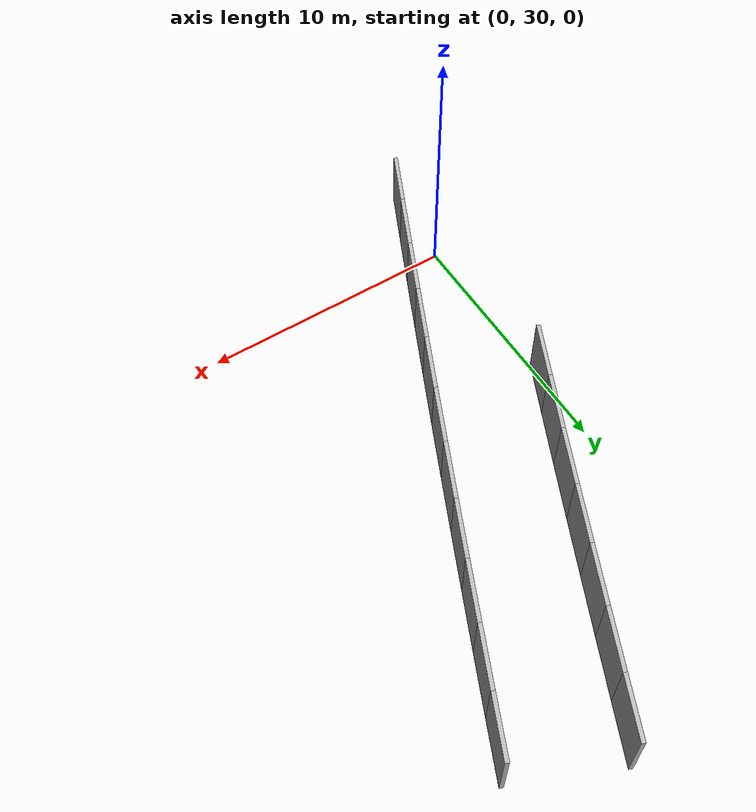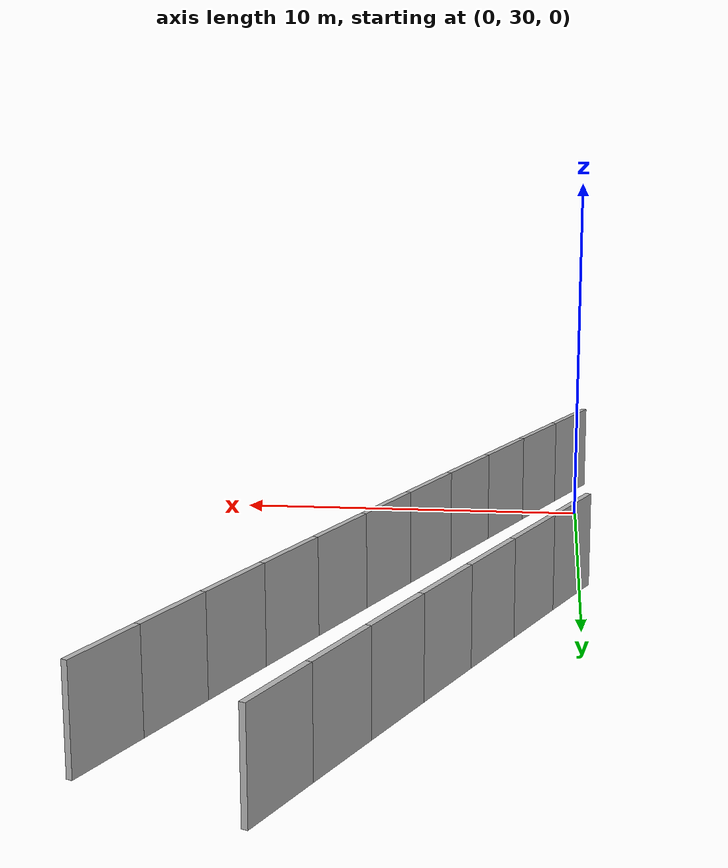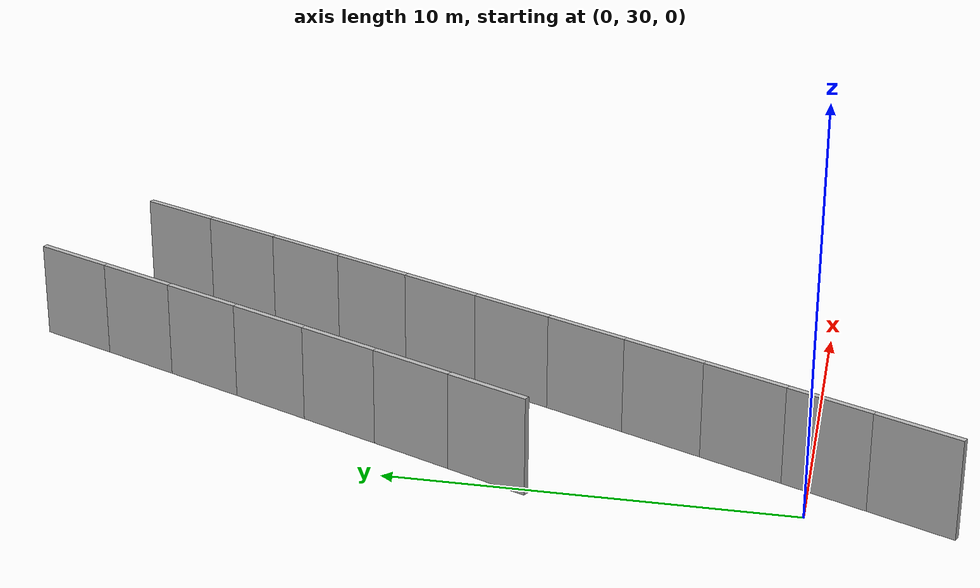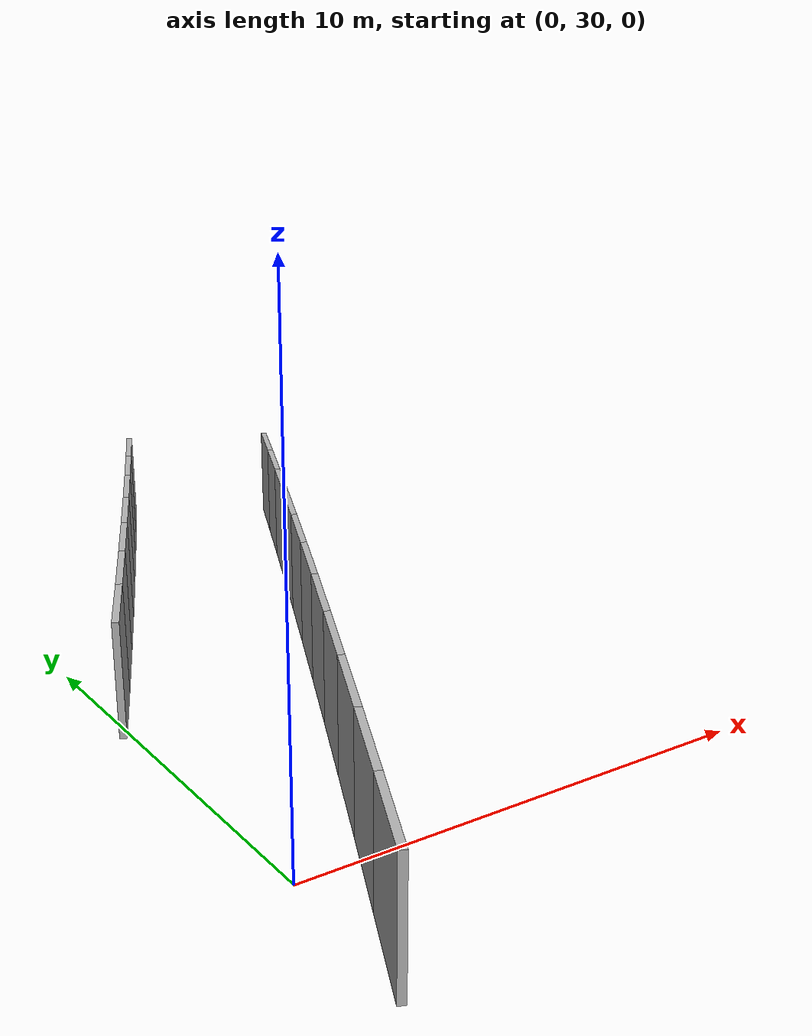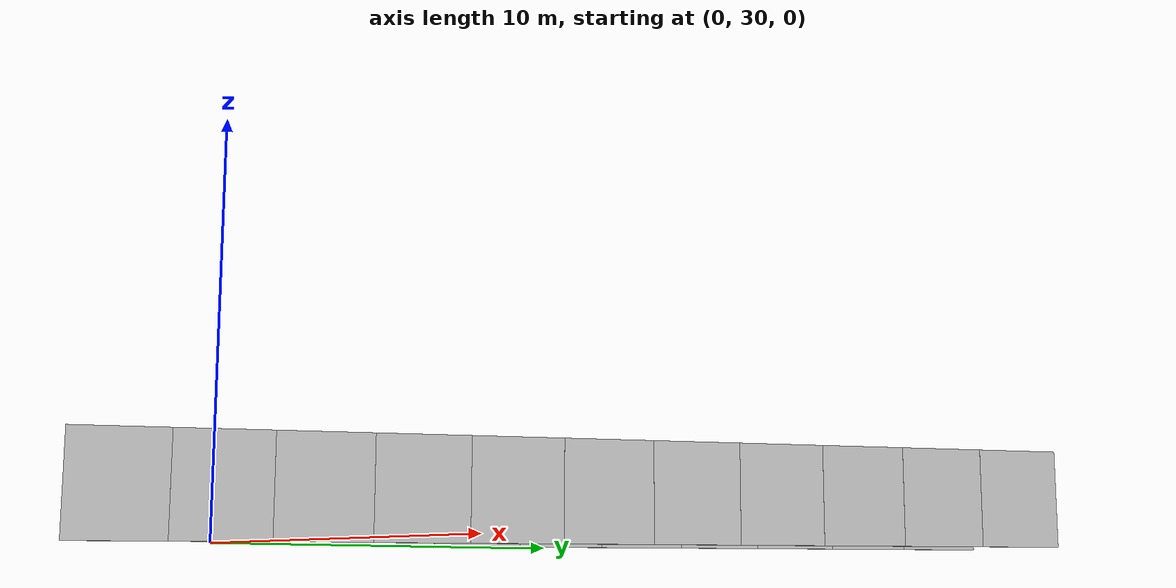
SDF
<?xml version="1.0" ?>
<sdf version="1.6">
  <model name="sps_4516">
    <pose frame="">0 0 0 0 -0 0</pose>
    <static>1</static>
    <self_collide>0</self_collide>
    <allow_auto_disable>0</allow_auto_disable>
    <link name="Wall4360">
      <kinematic>0</kinematic>
      <gravity>1</gravity>
      <self_collide>0</self_collide>
      <collision name="collision">
        <geometry>
          <box>
            <size>2.25455 0.15 2.5</size>
          </box>
        </geometry>
        <pose frame="">0 0 0 0 -0 0</pose>
      </collision>
      <visual name="visual">
        <geometry>
          <box>
            <size>2.25455 0.15 2.5</size>
          </box>
        </geometry>
        <pose frame="">0 0 0 0 -0 0</pose>
        <cast_shadows>1</cast_shadows>
        <transparency>0.0</transparency>
      </visual>
      <pose frame="">0.206443 27.573 1.25 0 -0 1.12623</pose>
    </link>
    <link name="Wall4361">
      <kinematic>0</kinematic>
      <gravity>1</gravity>
      <self_collide>0</self_collide>
      <collision name="collision">
        <geometry>
          <box>
            <size>2.25473 0.15 2.5</size>
          </box>
        </geometry>
        <pose frame="">0 0 0 0 -0 0</pose>
      </collision>
      <visual name="visual">
        <geometry>
          <box>
            <size>2.25473 0.15 2.5</size>
          </box>
        </geometry>
        <pose frame="">0 0 0 0 -0 0</pose>
        <cast_shadows>1</cast_shadows>
        <transparency>0.0</transparency>
      </visual>
      <pose frame="">1.17376 29.6096 1.25 0 -0 1.12852</pose>
    </link>
    <link name="Wall4362">
      <kinematic>0</kinematic>
      <gravity>1</gravity>
      <self_collide>0</self_collide>
      <collision name="collision">
        <geometry>
          <box>
            <size>2.25456 0.15 2.5</size>
          </box>
        </geometry>
        <pose frame="">0 0 0 0 -0 0</pose>
      </collision>
      <visual name="visual">
        <geometry>
          <box>
            <size>2.25456 0.15 2.5</size>
          </box>
        </geometry>
        <pose frame="">0 0 0 0 -0 0</pose>
        <cast_shadows>1</cast_shadows>
        <transparency>0.0</transparency>
      </visual>
      <pose frame="">2.13625 31.6485 1.25 0 -0 1.13097</pose>
    </link>
    <link name="Wall4363">
      <kinematic>0</kinematic>
      <gravity>1</gravity>
      <self_collide>0</self_collide>
      <collision name="collision">
        <geometry>
          <box>
            <size>2.25485 0.15 2.5</size>
          </box>
        </geometry>
        <pose frame="">0 0 0 0 -0 0</pose>
      </collision>
      <visual name="visual">
        <geometry>
          <box>
            <size>2.25485 0.15 2.5</size>
          </box>
        </geometry>
        <pose frame="">0 0 0 0 -0 0</pose>
        <cast_shadows>1</cast_shadows>
        <transparency>0.0</transparency>
      </visual>
      <pose frame="">3.09396 33.6897 1.25 0 -0 1.13324</pose>
    </link>
    <link name="Wall4364">
      <kinematic>0</kinematic>
      <gravity>1</gravity>
      <self_collide>0</self_collide>
      <collision name="collision">
        <geometry>
          <box>
            <size>2.25431 0.15 2.5</size>
          </box>
        </geometry>
        <pose frame="">0 0 0 0 -0 0</pose>
      </collision>
      <visual name="visual">
        <geometry>
          <box>
            <size>2.25431 0.15 2.5</size>
          </box>
        </geometry>
        <pose frame="">0 0 0 0 -0 0</pose>
        <cast_shadows>1</cast_shadows>
        <transparency>0.0</transparency>
      </visual>
      <pose frame="">4.04687 35.733 1.25 0 -0 1.13561</pose>
    </link>
    <link name="Wall4365">
      <kinematic>0</kinematic>
      <gravity>1</gravity>
      <self_collide>0</self_collide>
      <collision name="collision">
        <geometry>
          <box>
            <size>2.25486 0.15 2.5</size>
          </box>
        </geometry>
        <pose frame="">0 0 0 0 -0 0</pose>
      </collision>
      <visual name="visual">
        <geometry>
          <box>
            <size>2.25486 0.15 2.5</size>
          </box>
        </geometry>
        <pose frame="">0 0 0 0 -0 0</pose>
        <cast_shadows>1</cast_shadows>
        <transparency>0.0</transparency>
      </visual>
      <pose frame="">4.99486 37.7786 1.25 0 -0 1.13805</pose>
    </link>
    <link name="Wall4366">
      <kinematic>0</kinematic>
      <gravity>1</gravity>
      <self_collide>0</self_collide>
      <collision name="collision">
        <geometry>
          <box>
            <size>2.25474 0.15 2.5</size>
          </box>
        </geometry>
        <pose frame="">0 0 0 0 -0 0</pose>
      </collision>
      <visual name="visual">
        <geometry>
          <box>
            <size>2.25474 0.15 2.5</size>
          </box>
        </geometry>
        <pose frame="">0 0 0 0 -0 0</pose>
        <cast_shadows>1</cast_shadows>
        <transparency>0.0</transparency>
      </visual>
      <pose frame="">5.93795 39.8267 1.25 0 -0 1.14049</pose>
    </link>
    <link name="Wall4367">
      <kinematic>0</kinematic>
      <gravity>1</gravity>
      <self_collide>0</self_collide>
      <collision name="collision">
        <geometry>
          <box>
            <size>2.25434 0.15 2.5</size>
          </box>
        </geometry>
        <pose frame="">0 0 0 0 -0 0</pose>
      </collision>
      <visual name="visual">
        <geometry>
          <box>
            <size>2.25434 0.15 2.5</size>
          </box>
        </geometry>
        <pose frame="">0 0 0 0 -0 0</pose>
        <cast_shadows>1</cast_shadows>
        <transparency>0.0</transparency>
      </visual>
      <pose frame="">6.87603 41.8768 1.25 0 -0 1.14283</pose>
    </link>
    <link name="Wall4368">
      <kinematic>0</kinematic>
      <gravity>1</gravity>
      <self_collide>0</self_collide>
      <collision name="collision">
        <geometry>
          <box>
            <size>2.25486 0.15 2.5</size>
          </box>
        </geometry>
        <pose frame="">0 0 0 0 -0 0</pose>
      </collision>
      <visual name="visual">
        <geometry>
          <box>
            <size>2.25486 0.15 2.5</size>
          </box>
        </geometry>
        <pose frame="">0 0 0 0 -0 0</pose>
        <cast_shadows>1</cast_shadows>
        <transparency>0.0</transparency>
      </visual>
      <pose frame="">7.80944 43.9291 1.25 0 -0 1.14507</pose>
    </link>
    <link name="Wall4369">
      <kinematic>0</kinematic>
      <gravity>1</gravity>
      <self_collide>0</self_collide>
      <collision name="collision">
        <geometry>
          <box>
            <size>2.25472 0.15 2.5</size>
          </box>
        </geometry>
        <pose frame="">0 0 0 0 -0 0</pose>
      </collision>
      <visual name="visual">
        <geometry>
          <box>
            <size>2.25472 0.15 2.5</size>
          </box>
        </geometry>
        <pose frame="">0 0 0 0 -0 0</pose>
        <cast_shadows>1</cast_shadows>
        <transparency>0.0</transparency>
      </visual>
      <pose frame="">8.73806 45.9838 1.25 0 -0 1.14757</pose>
    </link>
    <link name="Wall4370">
      <kinematic>0</kinematic>
      <gravity>1</gravity>
      <self_collide>0</self_collide>
      <collision name="collision">
        <geometry>
          <box>
            <size>2.25432 0.15 2.5</size>
          </box>
        </geometry>
        <pose frame="">0 0 0 0 -0 0</pose>
      </collision>
      <visual name="visual">
        <geometry>
          <box>
            <size>2.25432 0.15 2.5</size>
          </box>
        </geometry>
        <pose frame="">0 0 0 0 -0 0</pose>
        <cast_shadows>1</cast_shadows>
        <transparency>0.0</transparency>
      </visual>
      <pose frame="">9.66155 48.0405 1.25 0 -0 1.14995</pose>
    </link>
    <link name="Wall6089">
      <kinematic>0</kinematic>
      <gravity>1</gravity>
      <self_collide>0</self_collide>
      <collision name="collision">
        <geometry>
          <box>
            <size>2.24457 0.15 2.5</size>
          </box>
        </geometry>
        <pose frame="">0 0 0 0 -0 0</pose>
      </collision>
      <visual name="visual">
        <geometry>
          <box>
            <size>2.24457 0.15 2.5</size>
          </box>
        </geometry>
        <pose frame="">0 0 0 0 -0 0</pose>
        <cast_shadows>1</cast_shadows>
        <transparency>0.0</transparency>
      </visual>
      <pose frame="">0.293357 37.4782 1.25 0 -0 1.13566</pose>
    </link>
    <link name="Wall6090">
      <kinematic>0</kinematic>
      <gravity>1</gravity>
      <self_collide>0</self_collide>
      <collision name="collision">
        <geometry>
          <box>
            <size>2.24495 0.15 2.5</size>
          </box>
        </geometry>
        <pose frame="">0 0 0 0 -0 0</pose>
      </collision>
      <visual name="visual">
        <geometry>
          <box>
            <size>2.24495 0.15 2.5</size>
          </box>
        </geometry>
        <pose frame="">0 0 0 0 -0 0</pose>
        <cast_shadows>1</cast_shadows>
        <transparency>0.0</transparency>
      </visual>
      <pose frame="">1.23714 39.5149 1.25 0 -0 1.13807</pose>
    </link>
    <link name="Wall6091">
      <kinematic>0</kinematic>
      <gravity>1</gravity>
      <self_collide>0</self_collide>
      <collision name="collision">
        <geometry>
          <box>
            <size>2.24493 0.15 2.5</size>
          </box>
        </geometry>
        <pose frame="">0 0 0 0 -0 0</pose>
      </collision>
      <visual name="visual">
        <geometry>
          <box>
            <size>2.24493 0.15 2.5</size>
          </box>
        </geometry>
        <pose frame="">0 0 0 0 -0 0</pose>
        <cast_shadows>1</cast_shadows>
        <transparency>0.0</transparency>
      </visual>
      <pose frame="">2.17614 41.554 1.25 0 -0 1.14043</pose>
    </link>
    <link name="Wall6092">
      <kinematic>0</kinematic>
      <gravity>1</gravity>
      <self_collide>0</self_collide>
      <collision name="collision">
        <geometry>
          <box>
            <size>2.24472 0.15 2.5</size>
          </box>
        </geometry>
        <pose frame="">0 0 0 0 -0 0</pose>
      </collision>
      <visual name="visual">
        <geometry>
          <box>
            <size>2.24472 0.15 2.5</size>
          </box>
        </geometry>
        <pose frame="">0 0 0 0 -0 0</pose>
        <cast_shadows>1</cast_shadows>
        <transparency>0.0</transparency>
      </visual>
      <pose frame="">3.11034 43.5952 1.25 0 -0 1.14272</pose>
    </link>
    <link name="Wall6093">
      <kinematic>0</kinematic>
      <gravity>1</gravity>
      <self_collide>0</self_collide>
      <collision name="collision">
        <geometry>
          <box>
            <size>2.24471 0.15 2.5</size>
          </box>
        </geometry>
        <pose frame="">0 0 0 0 -0 0</pose>
      </collision>
      <visual name="visual">
        <geometry>
          <box>
            <size>2.24471 0.15 2.5</size>
          </box>
        </geometry>
        <pose frame="">0 0 0 0 -0 0</pose>
        <cast_shadows>1</cast_shadows>
        <transparency>0.0</transparency>
      </visual>
      <pose frame="">4.03966 45.6385 1.25 0 -0 1.14517</pose>
    </link>
    <link name="Wall6094">
      <kinematic>0</kinematic>
      <gravity>1</gravity>
      <self_collide>0</self_collide>
      <collision name="collision">
        <geometry>
          <box>
            <size>2.24483 0.15 2.5</size>
          </box>
        </geometry>
        <pose frame="">0 0 0 0 -0 0</pose>
      </collision>
      <visual name="visual">
        <geometry>
          <box>
            <size>2.24483 0.15 2.5</size>
          </box>
        </geometry>
        <pose frame="">0 0 0 0 -0 0</pose>
        <cast_shadows>1</cast_shadows>
        <transparency>0.0</transparency>
      </visual>
      <pose frame="">4.96407 47.6841 1.25 0 -0 1.14755</pose>
    </link>
    <link name="Wall6095">
      <kinematic>0</kinematic>
      <gravity>1</gravity>
      <self_collide>0</self_collide>
      <collision name="collision">
        <geometry>
          <box>
            <size>2.24492 0.15 2.5</size>
          </box>
        </geometry>
        <pose frame="">0 0 0 0 -0 0</pose>
      </collision>
      <visual name="visual">
        <geometry>
          <box>
            <size>2.24492 0.15 2.5</size>
          </box>
        </geometry>
        <pose frame="">0 0 0 0 -0 0</pose>
        <cast_shadows>1</cast_shadows>
        <transparency>0.0</transparency>
      </visual>
      <pose frame="">5.88366 49.732 1.25 0 -0 1.14992</pose>
    </link>
  </model>
</sdf>
